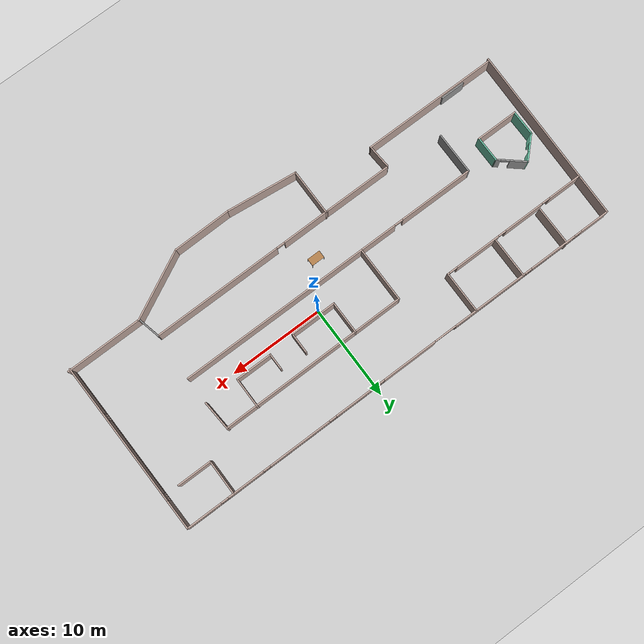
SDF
<sdf version="1.6">
 <world name="default">
  <model name="ground_plane">
   <static>1</static>
   <link name="link">
    <collision name="collision">
     <geometry><plane><normal>0 0 1</normal><size>100 100</size></plane></geometry>
     <surface><friction><ode><mu>100</mu><mu2>50</mu2></ode></friction></surface>
    </collision>
    <visual name="visual">
     <cast_shadows>0</cast_shadows>
     <geometry><plane><normal>0 0 1</normal><size>100 100</size></plane></geometry>
     <material>
      <script><uri>file://media/materials/scripts/gazebo.material</uri><name>Gazebo/Grey</name></script>
     </material>
    </visual>
   </link>
  </model>
  <model name="officesim">
   <pose>-2.8701 -1.6759 0 0 -0 0</pose>
   <link name="Door_8">
    <collision name="Door_8_Collision">
     <geometry><box><size>2.61208 0.2 2</size></box></geometry>
     <pose>0 0 1 0 -0 0</pose>
    </collision>
    <visual name="Door_8_Visual">
     <pose>0 0 1 0 -0 0</pose>
     <geometry><box><size>2.61208 0.2 2</size></box></geometry>
     <material>
      <script><uri>file://media/materials/scripts/gazebo.material</uri><name>Gazebo/Grey</name></script>
     </material>
    </visual>
    <pose>-20.5074 -7.65643 0 0 -0 0</pose>
   </link>
   <link name="Wall_0">
    <pose>-0.078667 10.8725 0 0 -0 0</pose>
    <visual name="Wall_0_Visual_0">
     <pose>-23.1341 0 1.25 0 -0 0</pose>
     <geometry><box><size>3.23173 0.15 2.5</size></box></geometry>
     <material>
      <script><uri>file://media/materials/scripts/gazebo.material</uri><name>Gazebo/Grey</name></script>
      <ambient>0.760784 0.662745 0.627451 1</ambient>
     </material>
    </visual>
    <collision name="Wall_0_Collision_0">
     <geometry><box><size>3.23173 0.15 2.5</size></box></geometry>
     <pose>-23.1341 0 1.25 0 -0 0</pose>
    </collision>
    <visual name="Wall_0_Visual_1">
     <pose>-0.958275 0 1.25 0 -0 0</pose>
     <geometry><box><size>6.01036 0.15 2.5</size></box></geometry>
     <material>
      <script><uri>file://media/materials/scripts/gazebo.material</uri><name>Gazebo/Grey</name></script>
      <ambient>0.760784 0.662745 0.627451 1</ambient>
     </material>
    </visual>
    <collision name="Wall_0_Collision_1">
     <geometry><box><size>6.01036 0.15 2.5</size></box></geometry>
     <pose>-0.958275 0 1.25 0 -0 0</pose>
    </collision>
    <visual name="Wall_0_Visual_2">
     <pose>-13.96 0 0.25 0 -0 0</pose>
     <geometry><box><size>15.1166 0.15 0.5</size></box></geometry>
     <material>
      <script><uri>file://media/materials/scripts/gazebo.material</uri><name>Gazebo/Grey</name></script>
      <ambient>0.760784 0.662745 0.627451 1</ambient>
     </material>
    </visual>
    <collision name="Wall_0_Collision_2">
     <geometry><box><size>15.1166 0.15 0.5</size></box></geometry>
     <pose>-13.96 0 0.25 0 -0 0</pose>
    </collision>
    <visual name="Wall_0_Visual_3">
     <pose>13.3985 0 0.25 0 -0 0</pose>
     <geometry><box><size>22.7031 0.15 0.5</size></box></geometry>
     <material>
      <script><uri>file://media/materials/scripts/gazebo.material</uri><name>Gazebo/Grey</name></script>
      <ambient>0.760784 0.662745 0.627451 1</ambient>
     </material>
    </visual>
    <collision name="Wall_0_Collision_3">
     <geometry><box><size>22.7031 0.15 0.5</size></box></geometry>
     <pose>13.3985 0 0.25 0 -0 0</pose>
    </collision>
    <visual name="Wall_0_Visual_4">
     <pose>-18.1034 0 1.5 0 -0 0</pose>
     <geometry><box><size>5.22973 0.15 2</size></box></geometry>
     <material>
      <script><uri>file://media/materials/scripts/gazebo.material</uri><name>Gazebo/Grey</name></script>
      <ambient>0.760784 0.662745 0.627451 1</ambient>
     </material>
    </visual>
    <collision name="Wall_0_Collision_4">
     <geometry><box><size>5.22973 0.15 2</size></box></geometry>
     <pose>-18.1034 0 1.5 0 -0 0</pose>
    </collision>
    <visual name="Wall_0_Visual_5">
     <pose>-10.5451 0 1.5 0 -0 0</pose>
     <geometry><box><size>8.28689 0.15 2</size></box></geometry>
     <material>
      <script><uri>file://media/materials/scripts/gazebo.material</uri><name>Gazebo/Grey</name></script>
      <ambient>0.760784 0.662745 0.627451 1</ambient>
     </material>
    </visual>
    <collision name="Wall_0_Collision_5">
     <geometry><box><size>8.28689 0.15 2</size></box></geometry>
     <pose>-10.5451 0 1.5 0 -0 0</pose>
    </collision>
    <visual name="Wall_0_Visual_6">
     <pose>-10.5451 0 1.5 0 -0 0</pose>
     <geometry><box><size>8.28689 0.15 2</size></box></geometry>
     <material>
      <script><uri>file://media/materials/scripts/gazebo.material</uri><name>Gazebo/Grey</name></script>
      <ambient>0.760784 0.662745 0.627451 1</ambient>
     </material>
    </visual>
    <collision name="Wall_0_Collision_6">
     <geometry><box><size>8.28689 0.15 2</size></box></geometry>
     <pose>-10.5451 0 1.5 0 -0 0</pose>
    </collision>
    <visual name="Wall_0_Visual_7">
     <pose>5.24642 0 1.5 0 -0 0</pose>
     <geometry><box><size>4.79904 0.15 2</size></box></geometry>
     <material>
      <script><uri>file://media/materials/scripts/gazebo.material</uri><name>Gazebo/Grey</name></script>
      <ambient>0.760784 0.662745 0.627451 1</ambient>
     </material>
    </visual>
    <collision name="Wall_0_Collision_7">
     <geometry><box><size>4.79904 0.15 2</size></box></geometry>
     <pose>5.24642 0 1.5 0 -0 0</pose>
    </collision>
    <visual name="Wall_0_Visual_8">
     <pose>11.8607 0 1.5 0 -0 0</pose>
     <geometry><box><size>6.82946 0.15 2</size></box></geometry>
     <material>
      <script><uri>file://media/materials/scripts/gazebo.material</uri><name>Gazebo/Grey</name></script>
      <ambient>0.760784 0.662745 0.627451 1</ambient>
     </material>
    </visual>
    <collision name="Wall_0_Collision_8">
     <geometry><box><size>6.82946 0.15 2</size></box></geometry>
     <pose>11.8607 0 1.5 0 -0 0</pose>
    </collision>
    <visual name="Wall_0_Visual_9">
     <pose>18.075 0 1.5 0 -0 0</pose>
     <geometry><box><size>3.99918 0.15 2</size></box></geometry>
     <material>
      <script><uri>file://media/materials/scripts/gazebo.material</uri><name>Gazebo/Grey</name></script>
      <ambient>0.760784 0.662745 0.627451 1</ambient>
     </material>
    </visual>
    <collision name="Wall_0_Collision_9">
     <geometry><box><size>3.99918 0.15 2</size></box></geometry>
     <pose>18.075 0 1.5 0 -0 0</pose>
    </collision>
    <visual name="Wall_0_Visual_10">
     <pose>22.8123 0 1.5 0 -0 0</pose>
     <geometry><box><size>3.87543 0.15 2</size></box></geometry>
     <material>
      <script><uri>file://media/materials/scripts/gazebo.material</uri><name>Gazebo/Grey</name></script>
      <ambient>0.760784 0.662745 0.627451 1</ambient>
     </material>
    </visual>
    <collision name="Wall_0_Collision_10">
     <geometry><box><size>3.87543 0.15 2</size></box></geometry>
     <pose>22.8123 0 1.5 0 -0 0</pose>
    </collision>
    <visual name="Wall_0_Visual_11">
     <pose>-21.1183 0 1.9 0 -0 0</pose>
     <geometry><box><size>0.8 0.15 1.2</size></box></geometry>
     <material>
      <script><uri>file://media/materials/scripts/gazebo.material</uri><name>Gazebo/Grey</name></script>
      <ambient>0.760784 0.662745 0.627451 1</ambient>
     </material>
    </visual>
    <collision name="Wall_0_Collision_11">
     <geometry><box><size>0.8 0.15 1.2</size></box></geometry>
     <pose>-21.1183 0 1.9 0 -0 0</pose>
    </collision>
    <visual name="Wall_0_Visual_12">
     <pose>2.44691 0 1.9 0 -0 0</pose>
     <geometry><box><size>0.8 0.15 1.2</size></box></geometry>
     <material>
      <script><uri>file://media/materials/scripts/gazebo.material</uri><name>Gazebo/Grey</name></script>
      <ambient>0.760784 0.662745 0.627451 1</ambient>
     </material>
    </visual>
    <collision name="Wall_0_Collision_12">
     <geometry><box><size>0.8 0.15 1.2</size></box></geometry>
     <pose>2.44691 0 1.9 0 -0 0</pose>
    </collision>
    <visual name="Wall_0_Visual_13">
     <pose>-15.0885 0 1.9 0 -0 0</pose>
     <geometry><box><size>0.8 0.15 1.2</size></box></geometry>
     <material>
      <script><uri>file://media/materials/scripts/gazebo.material</uri><name>Gazebo/Grey</name></script>
      <ambient>0.760784 0.662745 0.627451 1</ambient>
     </material>
    </visual>
    <collision name="Wall_0_Collision_13">
     <geometry><box><size>0.8 0.15 1.2</size></box></geometry>
     <pose>-15.0885 0 1.9 0 -0 0</pose>
    </collision>
    <visual name="Wall_0_Visual_14">
     <pose>8.04594 0 1.9 0 -0 0</pose>
     <geometry><box><size>0.8 0.15 1.2</size></box></geometry>
     <material>
      <script><uri>file://media/materials/scripts/gazebo.material</uri><name>Gazebo/Grey</name></script>
      <ambient>0.760784 0.662745 0.627451 1</ambient>
     </material>
    </visual>
    <collision name="Wall_0_Collision_14">
     <geometry><box><size>0.8 0.15 1.2</size></box></geometry>
     <pose>8.04594 0 1.9 0 -0 0</pose>
    </collision>
    <visual name="Wall_0_Visual_15">
     <pose>15.6754 0 1.9 0 -0 0</pose>
     <geometry><box><size>0.8 0.15 1.2</size></box></geometry>
     <material>
      <script><uri>file://media/materials/scripts/gazebo.material</uri><name>Gazebo/Grey</name></script>
      <ambient>0.760784 0.662745 0.627451 1</ambient>
     </material>
    </visual>
    <collision name="Wall_0_Collision_15">
     <geometry><box><size>0.8 0.15 1.2</size></box></geometry>
     <pose>15.6754 0 1.9 0 -0 0</pose>
    </collision>
    <visual name="Wall_0_Visual_16">
     <pose>20.4746 0 1.9 0 -0 0</pose>
     <geometry><box><size>0.8 0.15 1.2</size></box></geometry>
     <material>
      <script><uri>file://media/materials/scripts/gazebo.material</uri><name>Gazebo/Grey</name></script>
      <ambient>0.760784 0.662745 0.627451 1</ambient>
     </material>
    </visual>
    <collision name="Wall_0_Collision_16">
     <geometry><box><size>0.8 0.15 1.2</size></box></geometry>
     <pose>20.4746 0 1.9 0 -0 0</pose>
    </collision>
    <visual name="Wall_0_Visual_17">
     <pose>-5.18255 0 2.25 0 -0 0</pose>
     <geometry><box><size>2.4382 0.15 0.5</size></box></geometry>
     <material>
      <script><uri>file://media/materials/scripts/gazebo.material</uri><name>Gazebo/Grey</name></script>
      <ambient>0.760784 0.662745 0.627451 1</ambient>
     </material>
    </visual>
    <collision name="Wall_0_Collision_17">
     <geometry><box><size>2.4382 0.15 0.5</size></box></geometry>
     <pose>-5.18255 0 2.25 0 -0 0</pose>
    </collision>
    <visual name="Wall_0_Visual_18">
     <pose>-5.18255 0 2.25 0 -0 0</pose>
     <geometry><box><size>2.4382 0.15 0.5</size></box></geometry>
     <material>
      <script><uri>file://media/materials/scripts/gazebo.material</uri><name>Gazebo/Grey</name></script>
      <ambient>0.760784 0.662745 0.627451 1</ambient>
     </material>
    </visual>
    <collision name="Wall_0_Collision_18">
     <geometry><box><size>2.4382 0.15 0.5</size></box></geometry>
     <pose>-5.18255 0 2.25 0 -0 0</pose>
    </collision>
   </link>
   <link name="Wall_1">
    <pose>24.7194 1.60331 0 0 0 -1.55743</pose>
    <visual name="Wall_1_Visual_0">
     <pose>-7.70288 0 1.25 0 -0 0</pose>
     <geometry><box><size>3.16131 0.15 2.5</size></box></geometry>
     <material>
      <script><uri>file://media/materials/scripts/gazebo.material</uri><name>Gazebo/Grey</name></script>
      <ambient>0.760784 0.662745 0.627451 1</ambient>
     </material>
    </visual>
    <collision name="Wall_1_Collision_0">
     <geometry><box><size>3.16131 0.15 2.5</size></box></geometry>
     <pose>-7.70288 0 1.25 0 -0 0</pose>
    </collision>
    <visual name="Wall_1_Visual_1">
     <pose>1.58065 0 0.25 0 -0 0</pose>
     <geometry><box><size>15.4058 0.15 0.5</size></box></geometry>
     <material>
      <script><uri>file://media/materials/scripts/gazebo.material</uri><name>Gazebo/Grey</name></script>
      <ambient>0.760784 0.662745 0.627451 1</ambient>
     </material>
    </visual>
    <collision name="Wall_1_Collision_1">
     <geometry><box><size>15.4058 0.15 0.5</size></box></geometry>
     <pose>1.58065 0 0.25 0 -0 0</pose>
    </collision>
    <visual name="Wall_1_Visual_2">
     <pose>-1.07769 0 1.5 0 -0 0</pose>
     <geometry><box><size>8.48906 0.15 2</size></box></geometry>
     <material>
      <script><uri>file://media/materials/scripts/gazebo.material</uri><name>Gazebo/Grey</name></script>
      <ambient>0.760784 0.662745 0.627451 1</ambient>
     </material>
    </visual>
    <collision name="Wall_1_Collision_2">
     <geometry><box><size>8.48906 0.15 2</size></box></geometry>
     <pose>-1.07769 0 1.5 0 -0 0</pose>
    </collision>
    <visual name="Wall_1_Visual_3">
     <pose>6.62518 0 1.5 0 -0 0</pose>
     <geometry><box><size>5.31669 0.15 2</size></box></geometry>
     <material>
      <script><uri>file://media/materials/scripts/gazebo.material</uri><name>Gazebo/Grey</name></script>
      <ambient>0.760784 0.662745 0.627451 1</ambient>
     </material>
    </visual>
    <collision name="Wall_1_Collision_3">
     <geometry><box><size>5.31669 0.15 2</size></box></geometry>
     <pose>6.62518 0 1.5 0 -0 0</pose>
    </collision>
    <visual name="Wall_1_Visual_4">
     <pose>-5.72222 0 1.9 0 -0 0</pose>
     <geometry><box><size>0.8 0.15 1.2</size></box></geometry>
     <material>
      <script><uri>file://media/materials/scripts/gazebo.material</uri><name>Gazebo/Grey</name></script>
      <ambient>0.760784 0.662745 0.627451 1</ambient>
     </material>
    </visual>
    <collision name="Wall_1_Collision_4">
     <geometry><box><size>0.8 0.15 1.2</size></box></geometry>
     <pose>-5.72222 0 1.9 0 -0 0</pose>
    </collision>
    <visual name="Wall_1_Visual_5">
     <pose>3.56684 0 1.9 0 -0 0</pose>
     <geometry><box><size>0.8 0.15 1.2</size></box></geometry>
     <material>
      <script><uri>file://media/materials/scripts/gazebo.material</uri><name>Gazebo/Grey</name></script>
      <ambient>0.760784 0.662745 0.627451 1</ambient>
     </material>
    </visual>
    <collision name="Wall_1_Collision_5">
     <geometry><box><size>0.8 0.15 1.2</size></box></geometry>
     <pose>3.56684 0 1.9 0 -0 0</pose>
    </collision>
   </link>
   <link name="Wall_14">
    <collision name="Wall_14_Collision">
     <geometry><box><size>6.27117 0.15 2.5</size></box></geometry>
     <pose>0 0 1.25 0 -0 0</pose>
    </collision>
    <visual name="Wall_14_Visual">
     <pose>0 0 1.25 0 -0 0</pose>
     <geometry><box><size>6.27117 0.15 2.5</size></box></geometry>
     <material>
      <script><uri>file://media/materials/scripts/gazebo.material</uri><name>Gazebo/Grey</name></script>
      <ambient>0.760784 0.662745 0.627451 1</ambient>
     </material>
    </visual>
    <pose>7.25272 -10.9104 0 0 0 -3.12722</pose>
   </link>
   <link name="Wall_15">
    <collision name="Wall_15_Collision">
     <geometry><box><size>7.67434 0.15 2.5</size></box></geometry>
     <pose>0 0 1.25 0 -0 0</pose>
    </collision>
    <visual name="Wall_15_Visual">
     <pose>0 0 1.25 0 -0 0</pose>
     <geometry><box><size>7.67434 0.15 2.5</size></box></geometry>
     <material>
      <script><uri>file://media/materials/scripts/gazebo.material</uri><name>Gazebo/Grey</name></script>
      <ambient>0.760784 0.662745 0.627451 1</ambient>
     </material>
    </visual>
    <pose>0.454703 -10.5264 0 0 -0 3.02758</pose>
   </link>
   <link name="Wall_16">
    <collision name="Wall_16_Collision">
     <geometry><box><size>5 0.15 2.5</size></box></geometry>
     <pose>0 0 1.25 0 -0 0</pose>
    </collision>
    <visual name="Wall_16_Visual">
     <pose>0 0 1.25 0 -0 0</pose>
     <geometry><box><size>5 0.15 2.5</size></box></geometry>
     <material>
      <script><uri>file://media/materials/scripts/gazebo.material</uri><name>Gazebo/Grey</name></script>
      <ambient>0.760784 0.662745 0.627451 1</ambient>
     </material>
    </visual>
    <pose>-3.28304 -7.61986 0 0 -0 1.5708</pose>
   </link>
   <link name="Wall_17">
    <collision name="Wall_17_Collision">
     <geometry><box><size>0.15 0.15 2.5</size></box></geometry>
     <pose>0 0 1.25 0 -0 0</pose>
    </collision>
    <visual name="Wall_17_Visual">
     <pose>0 0 1.25 0 -0 0</pose>
     <geometry><box><size>0.15 0.15 2.5</size></box></geometry>
     <material>
      <script><uri>file://media/materials/scripts/gazebo.material</uri><name>Gazebo/Grey</name></script>
      <ambient>1 1 1 1</ambient>
     </material>
    </visual>
    <pose>-3.28304 -5.24836 0 0 -0 0</pose>
   </link>
   <link name="Wall_19">
    <collision name="Wall_19_Collision">
     <geometry><box><size>7.63209 0.15 2.5</size></box></geometry>
     <pose>0 0 1.25 0 -0 0</pose>
    </collision>
    <visual name="Wall_19_Visual">
     <pose>0 0 1.25 0 -0 0</pose>
     <geometry><box><size>7.63209 0.15 2.5</size></box></geometry>
     <material>
      <script><uri>file://media/materials/scripts/gazebo.material</uri><name>Gazebo/Grey</name></script>
      <ambient>0.760784 0.662745 0.627451 1</ambient>
     </material>
    </visual>
    <pose>13.6569 -9.18898 0 0 -0 0.464953</pose>
   </link>
   <link name="Wall_20">
    <collision name="Wall_20_Collision">
     <geometry><box><size>8.2824 0.15 2.5</size></box></geometry>
     <pose>0 0 1.25 0 -0 0</pose>
    </collision>
    <visual name="Wall_20_Visual">
     <pose>0 0 1.25 0 -0 0</pose>
     <geometry><box><size>8.2824 0.15 2.5</size></box></geometry>
     <material>
      <script><uri>file://media/materials/scripts/gazebo.material</uri><name>Gazebo/Grey</name></script>
      <ambient>0.760784 0.662745 0.627451 1</ambient>
     </material>
    </visual>
    <pose>21.0135 -7.50165 0 0 -0 0.002439</pose>
   </link>
   <link name="Wall_24">
    <collision name="Wall_24_Collision">
     <geometry><box><size>4.5 0.15 2.5</size></box></geometry>
     <pose>0 0 1.25 0 -0 0</pose>
    </collision>
    <visual name="Wall_24_Visual">
     <pose>0 0 1.25 0 -0 0</pose>
     <geometry><box><size>4.5 0.15 2.5</size></box></geometry>
     <material>
      <script><uri>file://media/materials/scripts/gazebo.material</uri><name>Gazebo/Grey</name></script>
      <ambient>1 1 1 1</ambient>
     </material>
    </visual>
    <pose>-16.6523 -2.4316 0 0 -0 1.5708</pose>
   </link>
   <link name="Wall_25">
    <pose>-10.2093 -0.256602 0 0 -0 0</pose>
    <visual name="Wall_25_Visual_0">
     <pose>-2.49362 0 1.25 0 -0 0</pose>
     <geometry><box><size>8.04875 0.15 2.5</size></box></geometry>
     <material>
      <script><uri>file://media/materials/scripts/gazebo.material</uri><name>Gazebo/Grey</name></script>
      <ambient>0.760784 0.662745 0.627451 1</ambient>
     </material>
    </visual>
    <collision name="Wall_25_Collision_0">
     <geometry><box><size>8.04875 0.15 2.5</size></box></geometry>
     <pose>-2.49362 0 1.25 0 -0 0</pose>
    </collision>
    <visual name="Wall_25_Visual_1">
     <pose>4.47437 0 1.25 0 -0 0</pose>
     <geometry><box><size>4.08725 0.15 2.5</size></box></geometry>
     <material>
      <script><uri>file://media/materials/scripts/gazebo.material</uri><name>Gazebo/Grey</name></script>
      <ambient>0.760784 0.662745 0.627451 1</ambient>
     </material>
    </visual>
    <collision name="Wall_25_Collision_1">
     <geometry><box><size>4.08725 0.15 2.5</size></box></geometry>
     <pose>4.47437 0 1.25 0 -0 0</pose>
    </collision>
    <visual name="Wall_25_Visual_2">
     <pose>1.98075 0 2.25 0 -0 0</pose>
     <geometry><box><size>0.9 0.15 0.5</size></box></geometry>
     <material>
      <script><uri>file://media/materials/scripts/gazebo.material</uri><name>Gazebo/Grey</name></script>
      <ambient>0.760784 0.662745 0.627451 1</ambient>
     </material>
    </visual>
    <collision name="Wall_25_Collision_2">
     <geometry><box><size>0.9 0.15 0.5</size></box></geometry>
     <pose>1.98075 0 2.25 0 -0 0</pose>
    </collision>
   </link>
   <link name="Wall_26">
    <collision name="Wall_26_Collision">
     <geometry><box><size>6 0.15 2.5</size></box></geometry>
     <pose>0 0 1.25 0 -0 0</pose>
    </collision>
    <visual name="Wall_26_Visual">
     <pose>0 0 1.25 0 -0 0</pose>
     <geometry><box><size>6 0.15 2.5</size></box></geometry>
     <material>
      <script><uri>file://media/materials/scripts/gazebo.material</uri><name>Gazebo/Grey</name></script>
      <ambient>0.760784 0.662745 0.627451 1</ambient>
     </material>
    </visual>
    <pose>-3.76628 2.6684 0 0 -0 1.5708</pose>
   </link>
   <link name="Wall_27">
    <collision name="Wall_27_Collision">
     <geometry><box><size>20.1971 0.15 2.5</size></box></geometry>
     <pose>0 0 1.25 0 -0 0</pose>
    </collision>
    <visual name="Wall_27_Visual">
     <pose>0 0 1.25 0 -0 0</pose>
     <geometry><box><size>20.1971 0.15 2.5</size></box></geometry>
     <material>
      <script><uri>file://media/materials/scripts/gazebo.material</uri><name>Gazebo/Grey</name></script>
      <ambient>0.760784 0.662745 0.627451 1</ambient>
     </material>
    </visual>
    <pose>6.31047 5.62015 0 0 -0 0.002669</pose>
   </link>
   <link name="Wall_28">
    <collision name="Wall_28_Collision">
     <geometry><box><size>3.25738 0.15 2.5</size></box></geometry>
     <pose>0 0 1.25 0 -0 0</pose>
    </collision>
    <visual name="Wall_28_Visual">
     <pose>0 0 1.25 0 -0 0</pose>
     <geometry><box><size>3.25738 0.15 2.5</size></box></geometry>
     <material>
      <script><uri>file://media/materials/scripts/gazebo.material</uri><name>Gazebo/Grey</name></script>
      <ambient>0.760784 0.662745 0.627451 1</ambient>
     </material>
    </visual>
    <pose>16.4407 4.1504 0 0 0 -1.50187</pose>
   </link>
   <link name="Wall_3">
    <collision name="Wall_3_Collision">
     <geometry><box><size>18.8892 0.15 2.5</size></box></geometry>
     <pose>0 0 1.25 0 -0 0</pose>
    </collision>
    <visual name="Wall_3_Visual">
     <pose>0 0 1.25 0 -0 0</pose>
     <geometry><box><size>18.8892 0.15 2.5</size></box></geometry>
     <material>
      <script><uri>file://media/materials/scripts/gazebo.material</uri><name>Gazebo/Grey</name></script>
      <ambient>0.760784 0.662745 0.627451 1</ambient>
     </material>
    </visual>
    <pose>-24.9161 1.4428 0 0 -0 1.55346</pose>
   </link>
   <link name="Wall_31">
    <collision name="Wall_31_Collision">
     <geometry><box><size>2.57633 0.15 2.5</size></box></geometry>
     <pose>0 0 1.25 0 -0 0</pose>
    </collision>
    <visual name="Wall_31_Visual">
     <pose>0 0 1.25 0 -0 0</pose>
     <geometry><box><size>2.57633 0.15 2.5</size></box></geometry>
     <material>
      <script><uri>file://media/materials/scripts/gazebo.material</uri><name>Gazebo/Grey</name></script>
      <ambient>0.760784 0.662745 0.627451 1</ambient>
     </material>
    </visual>
    <pose>-10.6483 -6.5544 0 0 -0 1.637</pose>
   </link>
   <link name="Wall_34">
    <collision name="Wall_34_Collision">
     <geometry><box><size>7.25 0.15 2.5</size></box></geometry>
     <pose>0 0 1.25 0 -0 0</pose>
    </collision>
    <visual name="Wall_34_Visual">
     <pose>0 0 1.25 0 -0 0</pose>
     <geometry><box><size>7.25 0.15 2.5</size></box></geometry>
     <material>
      <script><uri>file://media/materials/scripts/gazebo.material</uri><name>Gazebo/Grey</name></script>
      <ambient>0.760784 0.662745 0.627451 1</ambient>
     </material>
    </visual>
    <pose>-7.01681 -5.24881 0 0 -0 3.14159</pose>
   </link>
   <link name="Wall_36">
    <pose>6.47619 -5.22206 0 0 -0 0.00269</pose>
    <visual name="Wall_36_Visual_0">
     <pose>-7.42655 0 1.25 0 -0 0</pose>
     <geometry><box><size>5.18297 0.15 2.5</size></box></geometry>
     <material>
      <script><uri>file://media/materials/scripts/gazebo.material</uri><name>Gazebo/Grey</name></script>
      <ambient>0.760784 0.662745 0.627451 1</ambient>
     </material>
    </visual>
    <collision name="Wall_36_Collision_0">
     <geometry><box><size>5.18297 0.15 2.5</size></box></geometry>
     <pose>-7.42655 0 1.25 0 -0 0</pose>
    </collision>
    <visual name="Wall_36_Visual_1">
     <pose>3.04148 0 1.25 0 -0 0</pose>
     <geometry><box><size>13.9531 0.15 2.5</size></box></geometry>
     <material>
      <script><uri>file://media/materials/scripts/gazebo.material</uri><name>Gazebo/Grey</name></script>
      <ambient>0.760784 0.662745 0.627451 1</ambient>
     </material>
    </visual>
    <collision name="Wall_36_Collision_1">
     <geometry><box><size>13.9531 0.15 2.5</size></box></geometry>
     <pose>3.04148 0 1.25 0 -0 0</pose>
    </collision>
    <visual name="Wall_36_Visual_2">
     <pose>-4.38506 0 2.25 0 -0 0</pose>
     <geometry><box><size>0.9 0.15 0.5</size></box></geometry>
     <material>
      <script><uri>file://media/materials/scripts/gazebo.material</uri><name>Gazebo/Grey</name></script>
      <ambient>0.760784 0.662745 0.627451 1</ambient>
     </material>
    </visual>
    <collision name="Wall_36_Collision_2">
     <geometry><box><size>0.9 0.15 0.5</size></box></geometry>
     <pose>-4.38506 0 2.25 0 -0 0</pose>
    </collision>
   </link>
   <link name="Wall_39">
    <pose>-16.8358 6.52173 0 0 -0 0</pose>
    <visual name="Wall_39_Visual_0">
     <pose>-6.18116 0 1.25 0 -0 0</pose>
     <geometry><box><size>3.63769 0.15 2.5</size></box></geometry>
     <material>
      <script><uri>file://media/materials/scripts/gazebo.material</uri><name>Gazebo/Grey</name></script>
      <ambient>0.760784 0.662745 0.627451 1</ambient>
     </material>
    </visual>
    <collision name="Wall_39_Collision_0">
     <geometry><box><size>3.63769 0.15 2.5</size></box></geometry>
     <pose>-6.18116 0 1.25 0 -0 0</pose>
    </collision>
    <visual name="Wall_39_Visual_1">
     <pose>-1.26394 0 1.25 0 -0 0</pose>
     <geometry><box><size>4.39675 0.15 2.5</size></box></geometry>
     <material>
      <script><uri>file://media/materials/scripts/gazebo.material</uri><name>Gazebo/Grey</name></script>
      <ambient>0.760784 0.662745 0.627451 1</ambient>
     </material>
    </visual>
    <collision name="Wall_39_Collision_1">
     <geometry><box><size>4.39675 0.15 2.5</size></box></geometry>
     <pose>-1.26394 0 1.25 0 -0 0</pose>
    </collision>
    <visual name="Wall_39_Visual_2">
     <pose>4.32707 0 1.25 0 -0 0</pose>
     <geometry><box><size>4.98527 0.15 2.5</size></box></geometry>
     <material>
      <script><uri>file://media/materials/scripts/gazebo.material</uri><name>Gazebo/Grey</name></script>
      <ambient>0.760784 0.662745 0.627451 1</ambient>
     </material>
    </visual>
    <collision name="Wall_39_Collision_2">
     <geometry><box><size>4.98527 0.15 2.5</size></box></geometry>
     <pose>4.32707 0 1.25 0 -0 0</pose>
    </collision>
    <visual name="Wall_39_Visual_3">
     <pose>7.85985 0 1.25 0 -0 0</pose>
     <geometry><box><size>0.280289 0.15 2.5</size></box></geometry>
     <material>
      <script><uri>file://media/materials/scripts/gazebo.material</uri><name>Gazebo/Grey</name></script>
      <ambient>0.760784 0.662745 0.627451 1</ambient>
     </material>
    </visual>
    <collision name="Wall_39_Collision_3">
     <geometry><box><size>0.280289 0.15 2.5</size></box></geometry>
     <pose>7.85985 0 1.25 0 -0 0</pose>
    </collision>
    <visual name="Wall_39_Visual_4">
     <pose>-3.91231 0 2.25 0 -0 0</pose>
     <geometry><box><size>0.9 0.15 0.5</size></box></geometry>
     <material>
      <script><uri>file://media/materials/scripts/gazebo.material</uri><name>Gazebo/Grey</name></script>
      <ambient>0.760784 0.662745 0.627451 1</ambient>
     </material>
    </visual>
    <collision name="Wall_39_Collision_4">
     <geometry><box><size>0.9 0.15 0.5</size></box></geometry>
     <pose>-3.91231 0 2.25 0 -0 0</pose>
    </collision>
    <visual name="Wall_39_Visual_5">
     <pose>1.38444 0 2.25 0 -0 0</pose>
     <geometry><box><size>0.9 0.15 0.5</size></box></geometry>
     <material>
      <script><uri>file://media/materials/scripts/gazebo.material</uri><name>Gazebo/Grey</name></script>
      <ambient>0.760784 0.662745 0.627451 1</ambient>
     </material>
    </visual>
    <collision name="Wall_39_Collision_5">
     <geometry><box><size>0.9 0.15 0.5</size></box></geometry>
     <pose>1.38444 0 2.25 0 -0 0</pose>
    </collision>
    <visual name="Wall_39_Visual_6">
     <pose>7.26971 0 2.25 0 -0 0</pose>
     <geometry><box><size>0.9 0.15 0.5</size></box></geometry>
     <material>
      <script><uri>file://media/materials/scripts/gazebo.material</uri><name>Gazebo/Grey</name></script>
      <ambient>0.760784 0.662745 0.627451 1</ambient>
     </material>
    </visual>
    <collision name="Wall_39_Collision_6">
     <geometry><box><size>0.9 0.15 0.5</size></box></geometry>
     <pose>7.26971 0 2.25 0 -0 0</pose>
    </collision>
   </link>
   <link name="Wall_40">
    <collision name="Wall_40_Collision">
     <geometry><box><size>4.5 0.15 2.5</size></box></geometry>
     <pose>0 0 1.25 0 -0 0</pose>
    </collision>
    <visual name="Wall_40_Visual">
     <pose>0 0 1.25 0 -0 0</pose>
     <geometry><box><size>4.5 0.15 2.5</size></box></geometry>
     <material>
      <script><uri>file://media/materials/scripts/gazebo.material</uri><name>Gazebo/Grey</name></script>
      <ambient>0.760784 0.662745 0.627451 1</ambient>
     </material>
    </visual>
    <pose>-8.9108 8.69674 0 0 -0 1.5708</pose>
   </link>
   <link name="Wall_42">
    <collision name="Wall_42_Collision">
     <geometry><box><size>4.25 0.15 2.5</size></box></geometry>
     <pose>0 0 1.25 0 -0 0</pose>
    </collision>
    <visual name="Wall_42_Visual">
     <pose>0 0 1.25 0 -0 0</pose>
     <geometry><box><size>4.25 0.15 2.5</size></box></geometry>
     <material>
      <script><uri>file://media/materials/scripts/gazebo.material</uri><name>Gazebo/Grey</name></script>
      <ambient>0.760784 0.662745 0.627451 1</ambient>
     </material>
    </visual>
    <pose>-14.5418 8.75193 0 0 0 -1.5708</pose>
   </link>
   <link name="Wall_44">
    <collision name="Wall_44_Collision">
     <geometry><box><size>4.25 0.15 2.5</size></box></geometry>
     <pose>0 0 1.25 0 -0 0</pose>
    </collision>
    <visual name="Wall_44_Visual">
     <pose>0 0 1.25 0 -0 0</pose>
     <geometry><box><size>4.25 0.15 2.5</size></box></geometry>
     <material>
      <script><uri>file://media/materials/scripts/gazebo.material</uri><name>Gazebo/Grey</name></script>
      <ambient>0.760784 0.662745 0.627451 1</ambient>
     </material>
    </visual>
    <pose>-19.7851 8.91244 0 0 0 -1.5708</pose>
   </link>
   <link name="Wall_46">
    <collision name="Wall_46_Collision">
     <geometry><box><size>20.464 0.15 2.5</size></box></geometry>
     <pose>0 0 1.25 0 -0 0</pose>
    </collision>
    <visual name="Wall_46_Visual">
     <pose>0 0 1.25 0 -0 0</pose>
     <geometry><box><size>20.464 0.15 2.5</size></box></geometry>
     <material>
      <script><uri>file://media/materials/scripts/gazebo.material</uri><name>Gazebo/Grey</name></script>
      <ambient>0.760784 0.662745 0.627451 1</ambient>
     </material>
    </visual>
    <pose>6.39072 -0.256602 0 0 -0 0</pose>
   </link>
   <link name="Wall_48">
    <collision name="Wall_48_Collision">
     <geometry><box><size>3.5 0.15 2.5</size></box></geometry>
     <pose>0 0 1.25 0 -0 0</pose>
    </collision>
    <visual name="Wall_48_Visual">
     <pose>0 0 1.25 0 -0 0</pose>
     <geometry><box><size>3.5 0.15 2.5</size></box></geometry>
     <material>
      <script><uri>file://media/materials/scripts/gazebo.material</uri><name>Gazebo/Grey</name></script>
      <ambient>0.760784 0.662745 0.627451 1</ambient>
     </material>
    </visual>
    <pose>1.40192 3.93719 0 0 0 -1.5708</pose>
   </link>
   <link name="Wall_49">
    <collision name="Wall_49_Collision">
     <geometry><box><size>5 0.15 2.5</size></box></geometry>
     <pose>0 0 1.25 0 -0 0</pose>
    </collision>
    <visual name="Wall_49_Visual">
     <pose>0 0 1.25 0 -0 0</pose>
     <geometry><box><size>5 0.15 2.5</size></box></geometry>
     <material>
      <script><uri>file://media/materials/scripts/gazebo.material</uri><name>Gazebo/Grey</name></script>
      <ambient>0.760784 0.662745 0.627451 1</ambient>
     </material>
    </visual>
    <pose>3.82692 2.26219 0 0 -0 0</pose>
   </link>
   <link name="Wall_50">
    <collision name="Wall_50_Collision">
     <geometry><box><size>2.25 0.15 2.5</size></box></geometry>
     <pose>0 0 1.25 0 -0 0</pose>
    </collision>
    <visual name="Wall_50_Visual">
     <pose>0 0 1.25 0 -0 0</pose>
     <geometry><box><size>2.25 0.15 2.5</size></box></geometry>
     <material>
      <script><uri>file://media/materials/scripts/gazebo.material</uri><name>Gazebo/Grey</name></script>
      <ambient>0.760784 0.662745 0.627451 1</ambient>
     </material>
    </visual>
    <pose>6.25192 3.31219 0 0 -0 1.5708</pose>
   </link>
   <link name="Wall_52">
    <collision name="Wall_52_Collision">
     <geometry><box><size>3.25 0.15 2.5</size></box></geometry>
     <pose>0 0 1.25 0 -0 0</pose>
    </collision>
    <visual name="Wall_52_Visual">
     <pose>0 0 1.25 0 -0 0</pose>
     <geometry><box><size>3.25 0.15 2.5</size></box></geometry>
     <material>
      <script><uri>file://media/materials/scripts/gazebo.material</uri><name>Gazebo/Grey</name></script>
      <ambient>0.760784 0.662745 0.627451 1</ambient>
     </material>
    </visual>
    <pose>12.905 4.11569 0 0 0 -1.5708</pose>
   </link>
   <link name="Wall_53">
    <collision name="Wall_53_Collision">
     <geometry><box><size>4 0.15 2.5</size></box></geometry>
     <pose>0 0 1.25 0 -0 0</pose>
    </collision>
    <visual name="Wall_53_Visual">
     <pose>0 0 1.25 0 -0 0</pose>
     <geometry><box><size>4 0.15 2.5</size></box></geometry>
     <material>
      <script><uri>file://media/materials/scripts/gazebo.material</uri><name>Gazebo/Grey</name></script>
      <ambient>0.760784 0.662745 0.627451 1</ambient>
     </material>
    </visual>
    <pose>10.98 2.56569 0 0 -0 3.14159</pose>
   </link>
   <link name="Wall_54">
    <collision name="Wall_54_Collision">
     <geometry><box><size>1.75 0.15 2.5</size></box></geometry>
     <pose>0 0 1.25 0 -0 0</pose>
    </collision>
    <visual name="Wall_54_Visual">
     <pose>0 0 1.25 0 -0 0</pose>
     <geometry><box><size>1.75 0.15 2.5</size></box></geometry>
     <material>
      <script><uri>file://media/materials/scripts/gazebo.material</uri><name>Gazebo/Grey</name></script>
      <ambient>0.760784 0.662745 0.627451 1</ambient>
     </material>
    </visual>
    <pose>9.05496 3.3657 0 0 -0 1.5708</pose>
   </link>
   <link name="Wall_56">
    <collision name="Wall_56_Collision">
     <geometry><box><size>3.75 0.15 2.5</size></box></geometry>
     <pose>0 0 1.25 0 -0 0</pose>
    </collision>
    <visual name="Wall_56_Visual">
     <pose>0 0 1.25 0 -0 0</pose>
     <geometry><box><size>3.75 0.15 2.5</size></box></geometry>
     <material>
      <script><uri>file://media/materials/scripts/gazebo.material</uri><name>Gazebo/Grey</name></script>
      <ambient>0.760784 0.662745 0.627451 1</ambient>
     </material>
    </visual>
    <pose>19.3788 9.00193 0 0 0 -1.5708</pose>
   </link>
   <link name="Wall_57">
    <collision name="Wall_57_Collision">
     <geometry><box><size>3.75 0.15 2.5</size></box></geometry>
     <pose>0 0 1.25 0 -0 0</pose>
    </collision>
    <visual name="Wall_57_Visual">
     <pose>0 0 1.25 0 -0 0</pose>
     <geometry><box><size>3.75 0.15 2.5</size></box></geometry>
     <material>
      <script><uri>file://media/materials/scripts/gazebo.material</uri><name>Gazebo/Grey</name></script>
      <ambient>0.760784 0.662745 0.627451 1</ambient>
     </material>
    </visual>
    <pose>21.1788 7.20194 0 0 -0 0</pose>
   </link>
   <link name="Wall_59">
    <pose>-22.7723 1.44792 0 0 0 -2.35619</pose>
    <visual name="Wall_59_Visual_0">
     <pose>-0.968692 0 1.25 0 -0 0</pose>
     <geometry><box><size>1.06262 0.15 2.5</size></box></geometry>
     <material>
      <script><uri>file://media/materials/scripts/gazebo.material</uri><name>Gazebo/Grey</name></script>
      <ambient>0.435294 0.796078 0.67451 1</ambient>
     </material>
    </visual>
    <collision name="Wall_59_Collision_0">
     <geometry><box><size>1.06262 0.15 2.5</size></box></geometry>
     <pose>-0.968692 0 1.25 0 -0 0</pose>
    </collision>
    <visual name="Wall_59_Visual_1">
     <pose>0.981308 0 1.25 0 -0 0</pose>
     <geometry><box><size>1.03738 0.15 2.5</size></box></geometry>
     <material>
      <script><uri>file://media/materials/scripts/gazebo.material</uri><name>Gazebo/Grey</name></script>
      <ambient>0.435294 0.796078 0.67451 1</ambient>
     </material>
    </visual>
    <collision name="Wall_59_Collision_1">
     <geometry><box><size>1.03738 0.15 2.5</size></box></geometry>
     <pose>0.981308 0 1.25 0 -0 0</pose>
    </collision>
    <visual name="Wall_59_Visual_2">
     <pose>0.012616 0 2.25 0 -0 0</pose>
     <geometry><box><size>0.9 0.15 0.5</size></box></geometry>
     <material>
      <script><uri>file://media/materials/scripts/gazebo.material</uri><name>Gazebo/Grey</name></script>
      <ambient>0.435294 0.796078 0.67451 1</ambient>
     </material>
    </visual>
    <collision name="Wall_59_Collision_2">
     <geometry><box><size>0.9 0.15 0.5</size></box></geometry>
     <pose>0.012616 0 2.25 0 -0 0</pose>
    </collision>
   </link>
   <link name="Wall_60">
    <collision name="Wall_60_Collision">
     <geometry><box><size>2.75 0.15 2.5</size></box></geometry>
     <pose>0 0 1.25 0 -0 0</pose>
    </collision>
    <visual name="Wall_60_Visual">
     <pose>0 0 1.25 0 -0 0</pose>
     <geometry><box><size>2.75 0.15 2.5</size></box></geometry>
     <material>
      <script><uri>file://media/materials/scripts/gazebo.material</uri><name>Gazebo/Grey</name></script>
      <ambient>0.435294 0.796078 0.67451 1</ambient>
     </material>
    </visual>
    <pose>-23.7799 -0.859709 0 0 0 -1.5708</pose>
   </link>
   <link name="Wall_61">
    <collision name="Wall_61_Collision">
     <geometry><box><size>4.5 0.15 2.5</size></box></geometry>
     <pose>0 0 1.25 0 -0 0</pose>
    </collision>
    <visual name="Wall_61_Visual">
     <pose>0 0 1.25 0 -0 0</pose>
     <geometry><box><size>4.5 0.15 2.5</size></box></geometry>
     <material>
      <script><uri>file://media/materials/scripts/gazebo.material</uri><name>Gazebo/Grey</name></script>
      <ambient>0.760784 0.662745 0.627451 1</ambient>
     </material>
    </visual>
    <pose>-21.6049 -2.15971 0 0 -0 0</pose>
   </link>
   <link name="Wall_62">
    <collision name="Wall_62_Collision">
     <geometry><box><size>2.75 0.15 2.5</size></box></geometry>
     <pose>0 0 1.25 0 -0 0</pose>
    </collision>
    <visual name="Wall_62_Visual">
     <pose>0 0 1.25 0 -0 0</pose>
     <geometry><box><size>2.75 0.15 2.5</size></box></geometry>
     <material>
      <script><uri>file://media/materials/scripts/gazebo.material</uri><name>Gazebo/Grey</name></script>
      <ambient>0.435294 0.796078 0.67451 1</ambient>
     </material>
    </visual>
    <pose>-19.4299 -0.859709 0 0 -0 1.5708</pose>
   </link>
   <link name="Wall_63">
    <pose>-20.5973 1.44792 0 0 -0 2.42951</pose>
    <visual name="Wall_63_Visual_0">
     <pose>-1.34197 0 1.25 0 -0 0</pose>
     <geometry><box><size>0.550256 0.15 2.5</size></box></geometry>
     <material>
      <script><uri>file://media/materials/scripts/gazebo.material</uri><name>Gazebo/Grey</name></script>
      <ambient>1 1 1 1</ambient>
     </material>
    </visual>
    <collision name="Wall_63_Collision_0">
     <geometry><box><size>0.550256 0.15 2.5</size></box></geometry>
     <pose>-1.34197 0 1.25 0 -0 0</pose>
    </collision>
    <visual name="Wall_63_Visual_1">
     <pose>0.725128 0 1.25 0 -0 0</pose>
     <geometry><box><size>1.78394 0.15 2.5</size></box></geometry>
     <material>
      <script><uri>file://media/materials/scripts/gazebo.material</uri><name>Gazebo/Grey</name></script>
      <ambient>1 1 1 1</ambient>
     </material>
    </visual>
    <collision name="Wall_63_Collision_1">
     <geometry><box><size>1.78394 0.15 2.5</size></box></geometry>
     <pose>0.725128 0 1.25 0 -0 0</pose>
    </collision>
    <visual name="Wall_63_Visual_2">
     <pose>-0.616844 0 2.25 0 -0 0</pose>
     <geometry><box><size>0.9 0.15 0.5</size></box></geometry>
     <material>
      <script><uri>file://media/materials/scripts/gazebo.material</uri><name>Gazebo/Grey</name></script>
      <ambient>1 1 1 1</ambient>
     </material>
    </visual>
    <collision name="Wall_63_Collision_2">
     <geometry><box><size>0.9 0.15 0.5</size></box></geometry>
     <pose>-0.616844 0 2.25 0 -0 0</pose>
    </collision>
   </link>
   <link name="Wall_67">
    <pose>16.6832 -6.35344 0 0 0 -1.34663</pose>
    <visual name="Wall_67_Visual_0">
     <pose>-0.830971 0 1.25 0 -0 0</pose>
     <geometry><box><size>0.863758 0.15 2.5</size></box></geometry>
     <material>
      <script><uri>file://media/materials/scripts/gazebo.material</uri><name>Gazebo/Grey</name></script>
      <ambient>1 1 1 1</ambient>
     </material>
    </visual>
    <collision name="Wall_67_Collision_0">
     <geometry><box><size>0.863758 0.15 2.5</size></box></geometry>
     <pose>-0.830971 0 1.25 0 -0 0</pose>
    </collision>
    <visual name="Wall_67_Visual_1">
     <pose>0.881879 0 1.25 0 -0 0</pose>
     <geometry><box><size>0.761942 0.15 2.5</size></box></geometry>
     <material>
      <script><uri>file://media/materials/scripts/gazebo.material</uri><name>Gazebo/Grey</name></script>
      <ambient>1 1 1 1</ambient>
     </material>
    </visual>
    <collision name="Wall_67_Collision_1">
     <geometry><box><size>0.761942 0.15 2.5</size></box></geometry>
     <pose>0.881879 0 1.25 0 -0 0</pose>
    </collision>
    <visual name="Wall_67_Visual_2">
     <pose>0.050908 0 2.25 0 -0 0</pose>
     <geometry><box><size>0.9 0.15 0.5</size></box></geometry>
     <material>
      <script><uri>file://media/materials/scripts/gazebo.material</uri><name>Gazebo/Grey</name></script>
      <ambient>1 1 1 1</ambient>
     </material>
    </visual>
    <collision name="Wall_67_Collision_2">
     <geometry><box><size>0.9 0.15 0.5</size></box></geometry>
     <pose>0.050908 0 2.25 0 -0 0</pose>
    </collision>
   </link>
   <link name="Wall_8">
    <collision name="Wall_8_Collision">
     <geometry><box><size>14.5 0.15 2.5</size></box></geometry>
     <pose>0 0 1.25 0 -0 0</pose>
    </collision>
    <visual name="Wall_8_Visual">
     <pose>0 0 1.25 0 -0 0</pose>
     <geometry><box><size>14.5 0.15 2.5</size></box></geometry>
     <material>
      <script><uri>file://media/materials/scripts/gazebo.material</uri><name>Gazebo/Grey</name></script>
      <ambient>0.760784 0.662745 0.627451 1</ambient>
     </material>
    </visual>
    <pose>-17.7431 -7.76491 0 0 -0 0</pose>
   </link>
   <static>1</static>
  </model>
  <model name="table_clone_1">
   <static>0</static>
   <link name="link">
    <collision name="surface">
     <pose>0 0 1 0 -0 0</pose>
     <geometry><box><size>1.5 0.8 0.03</size></box></geometry>
     <surface><friction><ode><mu>0.6</mu><mu2>0.6</mu2></ode></friction></surface>
    </collision>
    <visual name="visual1">
     <pose>0 0 1 0 -0 0</pose>
     <geometry><box><size>1.4 0.8 0.04</size></box></geometry>
     <material>
      <script><uri>file://media/materials/scripts/gazebo.material</uri><name>Gazebo/Wood</name></script>
     </material>
    </visual>
    <collision name="front_left_leg">
     <pose>0.68 0.38 0.5 0 -0 0</pose>
     <geometry><cylinder><radius>0.02</radius><length>1</length></cylinder></geometry>
    </collision>
    <visual name="front_left_leg">
     <pose>0.68 0.38 0.5 0 -0 0</pose>
     <geometry><cylinder><radius>0.02</radius><length>1</length></cylinder></geometry>
     <material>
      <script><uri>file://media/materials/scripts/gazebo.material</uri><name>Gazebo/Grey</name></script>
     </material>
    </visual>
    <collision name="front_right_leg">
     <pose>0.68 -0.38 0.5 0 -0 0</pose>
     <geometry><cylinder><radius>0.02</radius><length>1</length></cylinder></geometry>
    </collision>
    <visual name="front_right_leg">
     <pose>0.68 -0.38 0.5 0 -0 0</pose>
     <geometry><cylinder><radius>0.02</radius><length>1</length></cylinder></geometry>
     <material>
      <script><uri>file://media/materials/scripts/gazebo.material</uri><name>Gazebo/Grey</name></script>
     </material>
    </visual>
    <collision name="back_right_leg">
     <pose>-0.68 -0.38 0.5 0 -0 0</pose>
     <geometry><cylinder><radius>0.02</radius><length>1</length></cylinder></geometry>
    </collision>
    <visual name="back_right_leg">
     <pose>-0.68 -0.38 0.5 0 -0 0</pose>
     <geometry><cylinder><radius>0.02</radius><length>1</length></cylinder></geometry>
     <material>
      <script><uri>file://media/materials/scripts/gazebo.material</uri><name>Gazebo/Grey</name></script>
     </material>
    </visual>
    <collision name="back_left_leg">
     <pose>-0.68 0.38 0.5 0 -0 0</pose>
     <geometry><cylinder><radius>0.02</radius><length>1</length></cylinder></geometry>
    </collision>
    <visual name="back_left_leg">
     <pose>-0.68 0.38 0.5 0 -0 0</pose>
     <geometry><cylinder><radius>0.02</radius><length>1</length></cylinder></geometry>
     <material>
      <script><uri>file://media/materials/scripts/gazebo.material</uri><name>Gazebo/Grey</name></script>
     </material>
    </visual>
    <inertial>
     <inertia><ixx>1</ixx><ixy>0</ixy><ixz>0</ixz><iyy>1</iyy><iyz>0</iyz><izz>1</izz></inertia>
     <mass>1</mass>
    </inertial>
   </link>
   <pose>-2.84539 -4.13016 -1e-06 0 1e-06 0</pose>
  </model>
 </world>
</sdf>
